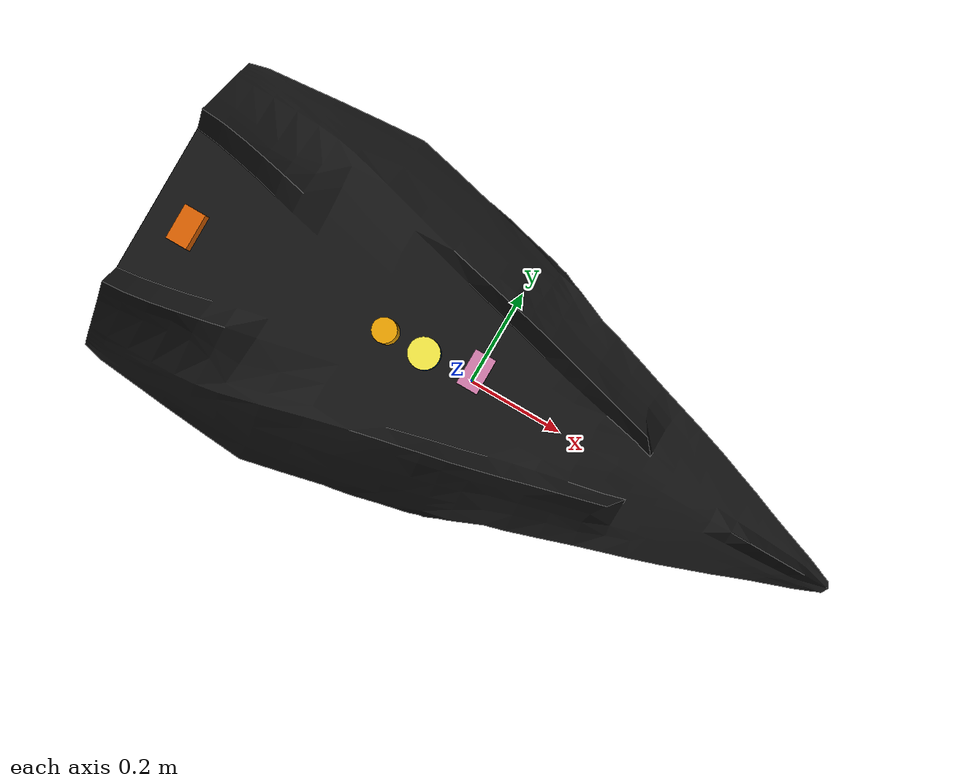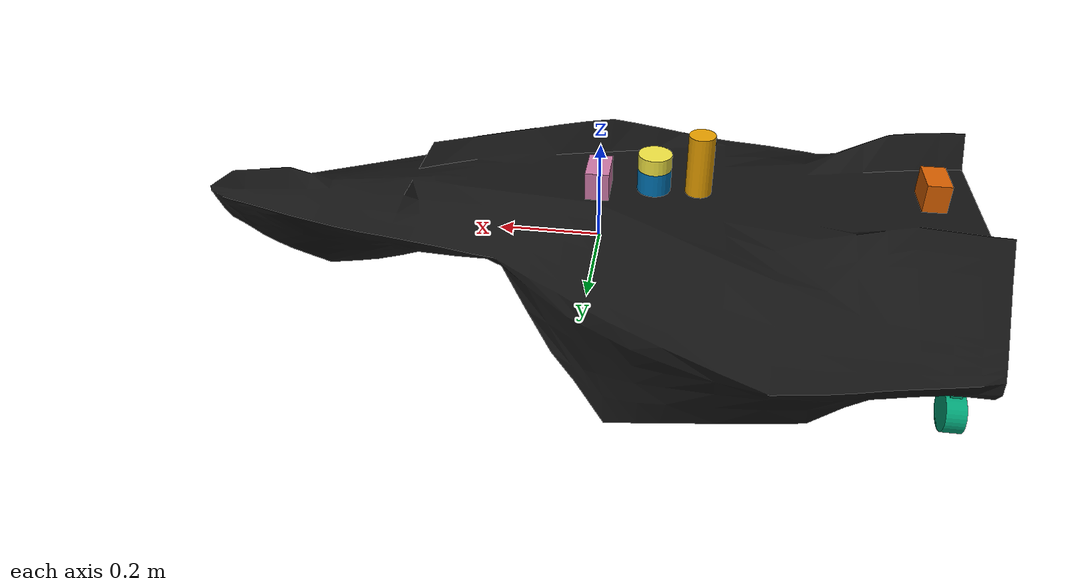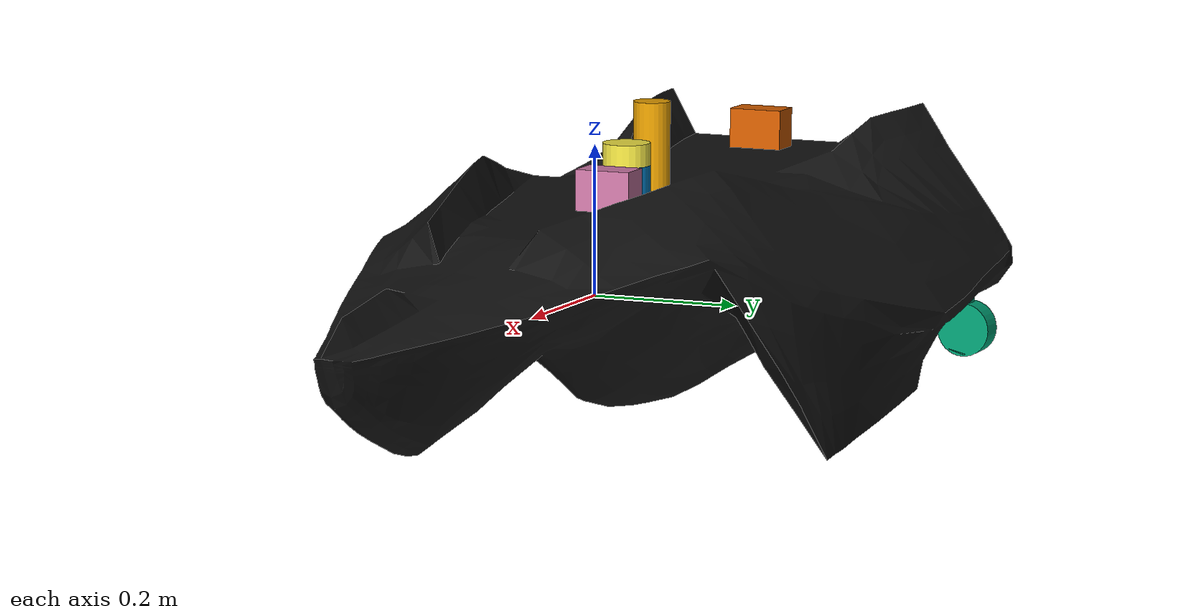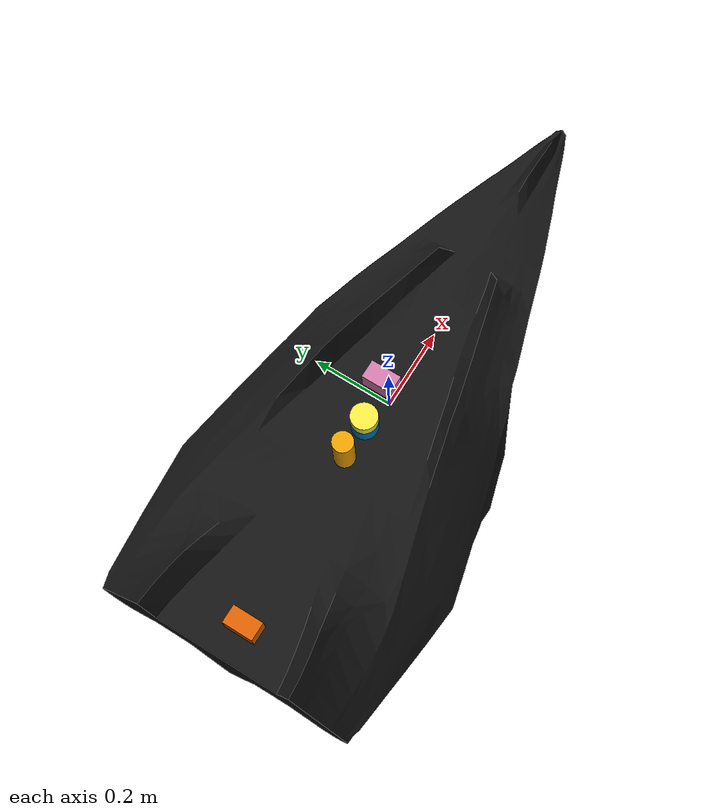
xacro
<?xml version="1.0"?>
<!--
  Robot: asket
  Generated by: LinkForge v1.3.4
  https://github.com/arounamounchili/linkforge
  Date: 2026-05-08 18:18:56
-->
<robot xmlns:xacro="http://www.ros.org/wiki/xacro" name="asket">
  <!-- Properties -->
  <xacro:property name="hull" value="0.073237 0.073237 0.073237 1" />
  <xacro:property name="camera_width" value="0.065" />
  <xacro:property name="camera_depth" value="0.075" />
  <xacro:property name="camera_height" value="0.045" />
  <xacro:property name="Lidar_radius" value="0.032" />
  <!-- Materials -->
  <material name="hull">
    <color rgba="${hull}" />
  </material>
  <!-- Links -->
  <link name="GPS">
    <inertial>
      <mass value="0.047" />
      <inertia ixx="0.000064" ixy="0" ixz="0" iyy="0.000064" iyz="0" izz="0.000015" />
    </inertial>
    <visual>
      <geometry>
        <cylinder radius="0.025" length="0.12" />
      </geometry>
    </visual>
    <collision>
      <geometry>
        <cylinder radius="0.025" length="0.12" />
      </geometry>
    </collision>
  </link>
  <link name="L_prop_blade">
    <inertial>
      <mass value="0.015" />
      <inertia ixx="6.9095913e-06" ixy="-2.3902956e-15" ixz="-1.4544952e-13" iyy="3.4860454e-06" iyz="-8.413842e-14" izz="3.4860457e-06" />
    </inertial>
    <visual>
      <geometry>
        <mesh filename="meshes/L_prop_blade_visual.obj" />
      </geometry>
    </visual>
    <collision>
      <geometry>
        <mesh filename="meshes/L_prop_blade_collision.stl" />
      </geometry>
    </collision>
  </link>
  <link name="L_prop_body">
    <inertial>
      <mass value="0.14" />
      <inertia ixx="0.000108986824" ixy="2.166276e-09" ixz="-2.3072687e-08" iyy="7.345061e-05" iyz="-5.3766197e-08" izz="6.267224e-05" />
    </inertial>
    <visual>
      <origin xyz="0 0 -0.02131" rpy="0 0 0" />
      <geometry>
        <mesh filename="meshes/L_prop_body_visual.obj" />
      </geometry>
    </visual>
    <collision>
      <origin xyz="0 0 -0.02131" rpy="0 0 0" />
      <geometry>
        <mesh filename="meshes/L_prop_body_collision.stl" />
      </geometry>
    </collision>
  </link>
  <link name="lidar">
    <inertial>
      <mass value="0.05" />
      <inertia ixx="0.000017" ixy="0" ixz="0" iyy="0.000017" iyz="0" izz="0.000026" />
    </inertial>
    <visual>
      <geometry>
        <cylinder radius="${Lidar_radius}" length="0.03" />
      </geometry>
    </visual>
    <collision>
      <geometry>
        <cylinder radius="${Lidar_radius}" length="0.03" />
      </geometry>
    </collision>
  </link>
  <link name="lidar_mount">
    <inertial>
      <mass value="0.015" />
      <inertia ixx="0.000006" ixy="0" ixz="0" iyy="0.000006" iyz="0" izz="0.000008" />
    </inertial>
    <visual>
      <geometry>
        <cylinder radius="${Lidar_radius}" length="0.045" />
      </geometry>
    </visual>
    <collision>
      <geometry>
        <cylinder radius="${Lidar_radius}" length="0.045" />
      </geometry>
    </collision>
  </link>
  <link name="back_camera">
    <inertial>
      <mass value="0.03" />
      <inertia ixx="0.000019" ixy="0" ixz="0" iyy="0.000016" iyz="0" izz="0.000025" />
    </inertial>
    <visual>
      <geometry>
        <box size="${camera_width} ${camera_depth} ${camera_height}" />
      </geometry>
    </visual>
    <collision>
      <geometry>
        <box size="${camera_width} ${camera_depth} ${camera_height}" />
      </geometry>
    </collision>
  </link>
  <link name="front_camera">
    <inertial>
      <mass value="0.03" />
      <inertia ixx="0.000019" ixy="0" ixz="0" iyy="0.000016" iyz="0" izz="0.000025" />
    </inertial>
    <visual>
      <geometry>
        <box size="${camera_width} ${camera_depth} ${camera_height}" />
      </geometry>
    </visual>
    <collision>
      <geometry>
        <box size="${camera_width} ${camera_depth} ${camera_height}" />
      </geometry>
    </collision>
  </link>
  <link name="base_link">
    <inertial>
      <mass value="14" />
      <inertia ixx="0.4626108" ixy="8.572913e-05" ixz="-8.047186e-05" iyy="1.6358644" iyz="-3.3231427e-05" izz="1.8897439" />
    </inertial>
    <visual>
      <origin xyz="0.05313 -0.000017 -0.013484" rpy="0 0 0" />
      <geometry>
        <mesh filename="meshes/hull_visual.obj" />
      </geometry>
      <material name="hull" />
    </visual>
    <collision>
      <origin xyz="0.053118 -0.000017 -0.013613" rpy="0 0 0" />
      <geometry>
        <mesh filename="meshes/hull_collision.stl" />
      </geometry>
    </collision>
  </link>
  <link name="px4">
    <inertial>
      <mass value="0.031" />
      <inertia ixx="0.000006" ixy="0" ixz="0" iyy="0.00002" iyz="0" izz="0.000024" />
    </inertial>
    <visual>
      <geometry>
        <box size="0.085 0.045 0.02" />
      </geometry>
    </visual>
    <collision>
      <origin xyz="0 0 0" rpy="0 0 0" />
      <geometry>
        <box size="0.085 0.045 0.02" />
      </geometry>
    </collision>
  </link>
  <link name="r_prop_blade">
    <inertial>
      <mass value="0.015" />
      <inertia ixx="6.9095913e-06" ixy="-2.3902956e-15" ixz="-1.4544952e-13" iyy="3.4860454e-06" iyz="-8.413842e-14" izz="3.4860457e-06" />
    </inertial>
    <visual>
      <geometry>
        <mesh filename="meshes/r_prop_blade_visual.obj" />
      </geometry>
    </visual>
    <collision>
      <geometry>
        <mesh filename="meshes/r_prop_blade_collision.stl" />
      </geometry>
    </collision>
  </link>
  <link name="r_prop_body">
    <inertial>
      <mass value="0.14" />
      <inertia ixx="0.00010898682" ixy="-2.1663829e-09" ixz="-2.3079071e-08" iyy="7.345056e-05" iyz="5.3650595e-08" izz="6.26723e-05" />
    </inertial>
    <visual>
      <origin xyz="0 0 -0.021311" rpy="0 0 0" />
      <geometry>
        <mesh filename="meshes/r_prop_body_visual.obj" />
      </geometry>
    </visual>
    <collision>
      <origin xyz="0 0 -0.021311" rpy="0 0 0" />
      <geometry>
        <mesh filename="meshes/r_prop_body_collision.stl" />
      </geometry>
    </collision>
  </link>
  <!-- Joints -->
  <joint name="GPS_joint" type="fixed">
    <origin xyz="-0.18827 0 0.174775" rpy="0 0 0" />
    <parent link="base_link" />
    <child link="GPS" />
  </joint>
  <joint name="L_prop_blade_joint" type="continuous">
    <origin xyz="0 0 -0.025" rpy="0 0 0" />
    <parent link="L_prop_body" />
    <child link="L_prop_blade" />
    <axis xyz="1 0 0" />
    <dynamics damping="0.01" friction="0" />
  </joint>
  <joint name="L_prop_body_joint" type="fixed">
    <origin xyz="-0.65 0.28 -0.1" rpy="0 0 0" />
    <parent link="base_link" />
    <child link="L_prop_body" />
  </joint>
  <joint name="lidar_joint" type="fixed">
    <origin xyz="0 0 0.0375" rpy="0 0 0" />
    <parent link="lidar_mount" />
    <child link="lidar" />
  </joint>
  <joint name="lidar_mount_joint" type="fixed">
    <origin xyz="-0.103585 0 0.137275" rpy="0 0 1.570796" />
    <parent link="base_link" />
    <child link="lidar_mount" />
  </joint>
  <joint name="back_camera_joint" type="fixed">
    <origin xyz="-0.62 -0.02 0.137275" rpy="0 1.570796 0" />
    <parent link="base_link" />
    <child link="back_camera" />
  </joint>
  <joint name="front_camera_joint" type="fixed">
    <origin xyz="0 0.02 0.137275" rpy="0 1.570796 0" />
    <parent link="base_link" />
    <child link="front_camera" />
  </joint>
  <joint name="px4_joint" type="fixed">
    <parent link="base_link" />
    <child link="px4" />
  </joint>
  <joint name="r_prop_blade_joint" type="continuous">
    <origin xyz="0 0 -0.025" rpy="0 0 0" />
    <parent link="r_prop_body" />
    <child link="r_prop_blade" />
    <axis xyz="1 0 0" />
    <dynamics damping="0.01" friction="0" />
  </joint>
  <joint name="r_prop_body_joint" type="fixed">
    <origin xyz="-0.65 -0.28 -0.1" rpy="0 0 0" />
    <parent link="base_link" />
    <child link="r_prop_body" />
  </joint>
  <!-- Sensors -->
  <gazebo reference="front_camera">
    <sensor name="front_camera_sensor" type="camera">
      <always_on>true</always_on>
      <update_rate>30</update_rate>
      <visualize>false</visualize>
      <topic>/front_camera_driver/image_raw</topic>
      <camera>
        <horizontal_fov>1.570796</horizontal_fov>
        <image>
          <width>640</width>
          <height>480</height>
          <format>R8G8B8</format>
        </image>
        <clip>
          <near>0.1</near>
          <far>100</far>
        </clip>
      </camera>
    </sensor>
  </gazebo>
  <gazebo reference="back_camera">
    <sensor name="back_camera_sensor" type="camera">
      <always_on>true</always_on>
      <update_rate>30</update_rate>
      <visualize>false</visualize>
      <topic>/back_camera_driver/image_raw</topic>
      <camera>
        <horizontal_fov>1.570796</horizontal_fov>
        <image>
          <width>640</width>
          <height>480</height>
          <format>R8G8B8</format>
        </image>
        <clip>
          <near>0.1</near>
          <far>100</far>
        </clip>
      </camera>
    </sensor>
  </gazebo>
  <gazebo reference="lidar">
    <sensor name="Lidar_sensor" type="gpu_lidar">
      <always_on>true</always_on>
      <update_rate>15</update_rate>
      <visualize>false</visualize>
      <topic>/lidar_driver/scan_raw</topic>
      <ray>
        <scan>
          <horizontal>
            <samples>640</samples>
            <resolution>1</resolution>
            <min_angle>-1.570796</min_angle>
            <max_angle>1.570796</max_angle>
          </horizontal>
          <vertical>
            <samples>1</samples>
            <resolution>0.01</resolution>
            <min_angle>0</min_angle>
            <max_angle>0</max_angle>
          </vertical>
        </scan>
        <range>
          <min>0.1</min>
          <max>10</max>
          <resolution>0.01</resolution>
        </range>
      </ray>
    </sensor>
  </gazebo>
  <gazebo reference="GPS">
    <sensor name="GPS_sensor" type="navsat">
      <always_on>true</always_on>
      <update_rate>5</update_rate>
      <visualize>false</visualize>
      <topic>/gps_driver/gps_raw</topic>
      <navsat />
    </sensor>
  </gazebo>
  <gazebo reference="px4">
    <sensor name="px4_sensor" type="imu">
      <always_on>true</always_on>
      <update_rate>200</update_rate>
      <visualize>false</visualize>
      <topic>/imu_driver/imu_raw</topic>
      <imu />
    </sensor>
  </gazebo>
  <gazebo>
    <plugin filename="gz-sim-odometry-publisher-system"
            name="gz::sim::systems::OdometryPublisher">
      <odom_frame>odom</odom_frame>
      <robot_base_frame>base_link</robot_base_frame>
      <odom_publish_frequency>30</odom_publish_frequency>
      <dimensions>2</dimensions>
    </plugin>
  </gazebo>
  <!-- Sim velocity controller: directly applies cmd_vel Twist to the model body.
       Appropriate for a surface vessel where thruster dynamics aren't simulated. -->
  <gazebo>
    <plugin filename="gz-sim-velocity-control-system"
            name="gz::sim::systems::VelocityControl">
      <cmd_vel_topic>/cmd_vel</cmd_vel_topic>
    </plugin>
  </gazebo>
</robot>
